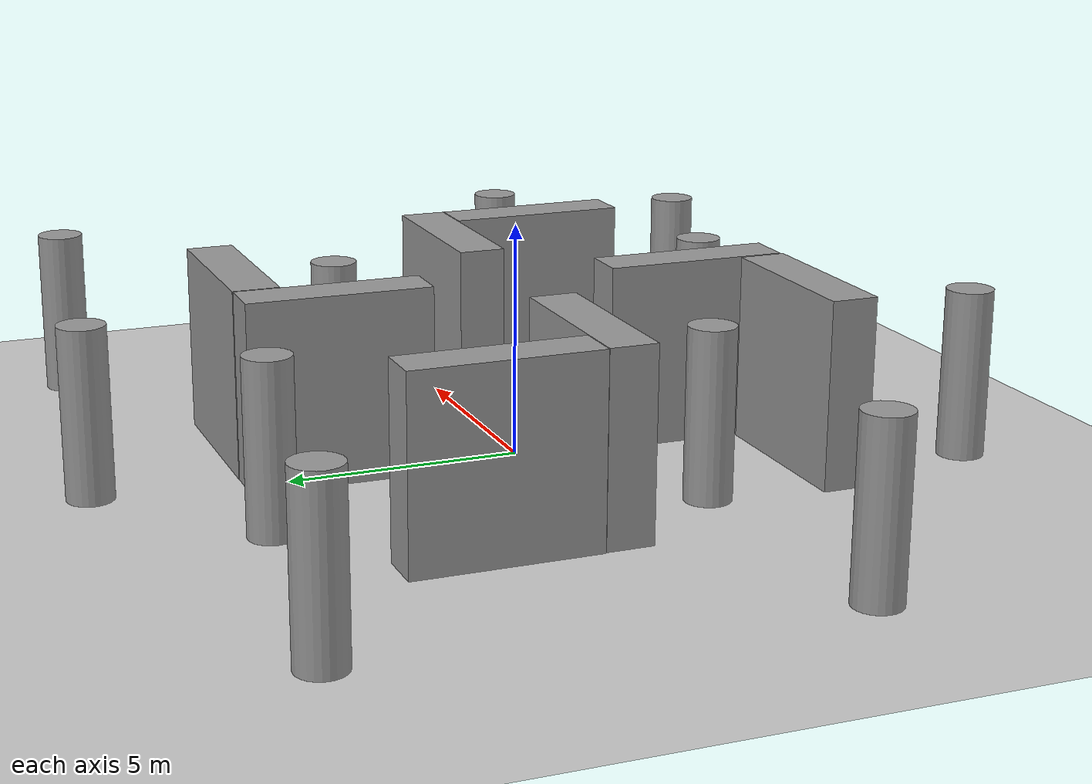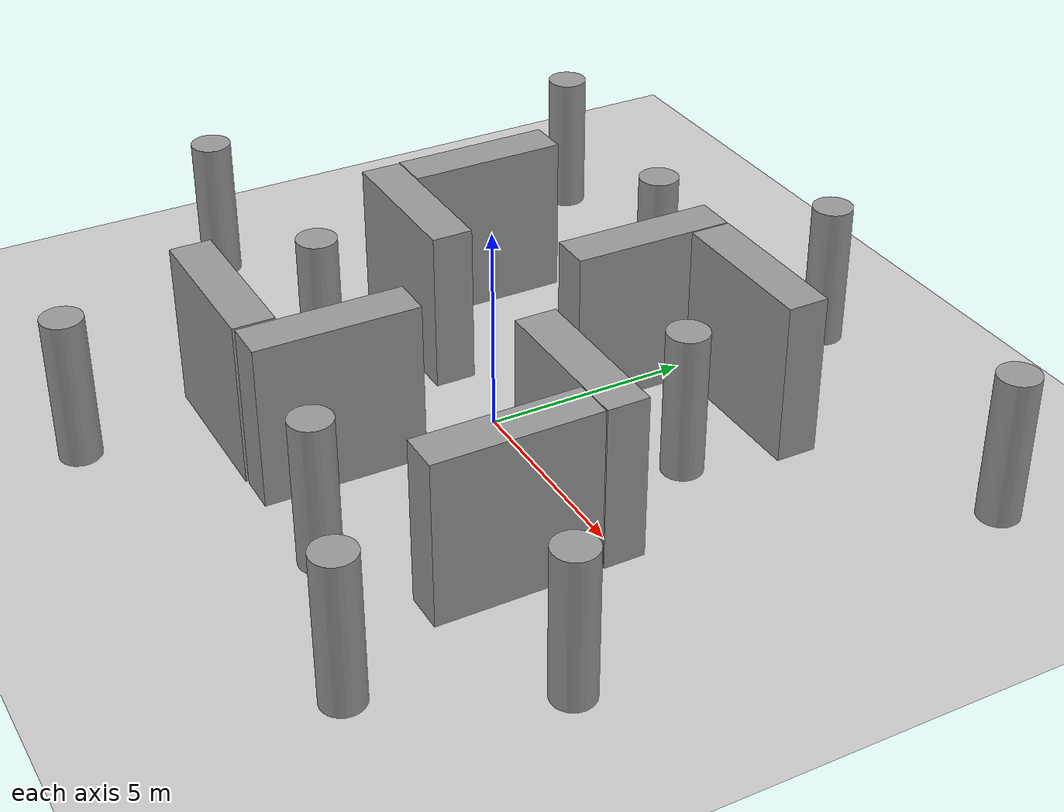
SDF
<sdf version="1.7">
 <world name="default">
  <light name="sun" type="directional">
   <pose>0 0 10 0 -0 0</pose>
   <diffuse>0.8 0.8 0.8 1</diffuse>
   <specular>0.2 0.2 0.2 1</specular>
   <attenuation>
    <range>1000</range>
    <constant>0.9</constant>
    <linear>0.01</linear>
    <quadratic>0.001</quadratic>
   </attenuation>
   <direction>-0.5 0.1 -0.9</direction>
   <spot><inner_angle>0</inner_angle><outer_angle>0</outer_angle><falloff>0</falloff></spot>
  </light>
  <model name="ground_plane">
   <static>1</static>
   <link name="link">
    <collision name="collision">
     <geometry><plane><normal>0 0 1</normal><size>100 100</size></plane></geometry>
     <surface>
      <contact><collide_bitmask>65535</collide_bitmask></contact>
      <friction><ode><mu>100</mu><mu2>50</mu2></ode></friction>
     </surface>
    </collision>
    <visual name="visual">
     <cast_shadows>0</cast_shadows>
     <geometry><plane><normal>0 0 1</normal><size>100 100</size></plane></geometry>
     <material>
      <script><uri>file://media/materials/scripts/gazebo.material</uri><name>Gazebo/Grey</name></script>
     </material>
    </visual>
   </link>
  </model>
  <gravity>0 0 -9.8</gravity>
  <magnetic_field>6e-06 2.3e-05 -4.2e-05</magnetic_field>
  <atmosphere type="adiabatic"/>
  <physics type="ode">
   <max_step_size>0.001</max_step_size>
   <real_time_factor>1</real_time_factor>
   <real_time_update_rate>1000</real_time_update_rate>
  </physics>
  <scene><ambient>0.4 0.4 0.4 1</ambient><background>0.7 0.7 0.7 1</background><shadows>1</shadows></scene>
  <spherical_coordinates>
   <surface_model>EARTH_WGS84</surface_model>
   <latitude_deg>0</latitude_deg>
   <longitude_deg>0</longitude_deg>
   <elevation>0</elevation>
   <heading_deg>0</heading_deg>
  </spherical_coordinates>
  <model name="unit_box_0">
   <pose>3.96568 -0.015529 2.00085 0 -1e-06 -0.000748</pose>
   <link name="link">
    <inertial>
     <mass>1</mass>
     <inertia>
      <ixx>0.166667</ixx>
      <ixy>0</ixy>
      <ixz>0</ixz>
      <iyy>0.166667</iyy>
      <iyz>0</iyz>
      <izz>0.166667</izz>
     </inertia>
    </inertial>
    <collision name="collision"><geometry><box><size>3.92856 1 4.0017</size></box></geometry></collision>
    <visual name="visual">
     <geometry><box><size>3.92856 1 4.0017</size></box></geometry>
     <material>
      <script><name>Gazebo/Grey</name><uri>file://media/materials/scripts/gazebo.material</uri></script>
     </material>
    </visual>
   </link>
  </model>
  <model name="unit_box_0_clone">
   <pose>0.0237 -3.97705 2.00085 0 -1e-06 -1.57935</pose>
   <link name="link">
    <inertial>
     <mass>1</mass>
     <inertia>
      <ixx>0.166667</ixx>
      <ixy>0</ixy>
      <ixz>0</ixz>
      <iyy>0.166667</iyy>
      <iyz>0</iyz>
      <izz>0.166667</izz>
     </inertia>
    </inertial>
    <collision name="collision"><geometry><box><size>3.92856 1 4.0017</size></box></geometry></collision>
    <visual name="visual">
     <geometry><box><size>3.92856 1 4.0017</size></box></geometry>
     <material>
      <script><name>Gazebo/Grey</name><uri>file://media/materials/scripts/gazebo.material</uri></script>
     </material>
    </visual>
   </link>
  </model>
  <model name="unit_box_0_clone_0">
   <pose>-0.025501 3.96052 2.00085 0 -1e-06 -1.58292</pose>
   <link name="link">
    <inertial>
     <mass>1</mass>
     <inertia>
      <ixx>0.166667</ixx>
      <ixy>0</ixy>
      <ixz>0</ixz>
      <iyy>0.166667</iyy>
      <iyz>0</iyz>
      <izz>0.166667</izz>
     </inertia>
    </inertial>
    <collision name="collision"><geometry><box><size>3.92856 1 4.0017</size></box></geometry></collision>
    <visual name="visual">
     <geometry><box><size>3.92856 1 4.0017</size></box></geometry>
     <material>
      <script><name>Gazebo/Grey</name><uri>file://media/materials/scripts/gazebo.material</uri></script>
     </material>
    </visual>
   </link>
  </model>
  <model name="unit_box_0_clone_1">
   <pose>-3.96951 0.000584 2.00085 0 -1e-06 -0.000694</pose>
   <link name="link">
    <inertial>
     <mass>1</mass>
     <inertia>
      <ixx>0.166667</ixx>
      <ixy>0</ixy>
      <ixz>0</ixz>
      <iyy>0.166667</iyy>
      <iyz>0</iyz>
      <izz>0.166667</izz>
     </inertia>
    </inertial>
    <collision name="collision"><geometry><box><size>3.92856 1 4.0017</size></box></geometry></collision>
    <visual name="visual">
     <geometry><box><size>3.92856 1 4.0017</size></box></geometry>
     <material>
      <script><name>Gazebo/Grey</name><uri>file://media/materials/scripts/gazebo.material</uri></script>
     </material>
    </visual>
   </link>
  </model>
  <model name="unit_box_0_clone_clone">
   <pose>5.42275 -2.50281 2.00085 0 1e-06 -1.57082</pose>
   <link name="link">
    <inertial>
     <mass>1</mass>
     <inertia>
      <ixx>0.166667</ixx>
      <ixy>0</ixy>
      <ixz>0</ixz>
      <iyy>0.166667</iyy>
      <iyz>0</iyz>
      <izz>0.166667</izz>
     </inertia>
    </inertial>
    <collision name="collision"><geometry><box><size>3.92856 1 4.0017</size></box></geometry></collision>
    <visual name="visual">
     <geometry><box><size>3.92856 1 4.0017</size></box></geometry>
     <material>
      <script><name>Gazebo/Grey</name><uri>file://media/materials/scripts/gazebo.material</uri></script>
     </material>
    </visual>
   </link>
  </model>
  <model name="unit_box_0_clone_clone_0">
   <pose>-5.46406 2.4845 2.00085 0 -1e-06 -1.57079</pose>
   <link name="link">
    <inertial>
     <mass>1</mass>
     <inertia>
      <ixx>0.166667</ixx>
      <ixy>0</ixy>
      <ixz>0</ixz>
      <iyy>0.166667</iyy>
      <iyz>0</iyz>
      <izz>0.166667</izz>
     </inertia>
    </inertial>
    <collision name="collision"><geometry><box><size>3.92856 1 4.0017</size></box></geometry></collision>
    <visual name="visual">
     <geometry><box><size>3.92856 1 4.0017</size></box></geometry>
     <material>
      <script><name>Gazebo/Grey</name><uri>file://media/materials/scripts/gazebo.material</uri></script>
     </material>
    </visual>
   </link>
  </model>
  <model name="unit_box_0_clone_2">
   <pose>-2.52082 -5.47721 2.00085 0 -1e-06 -0.000807</pose>
   <link name="link">
    <inertial>
     <mass>1</mass>
     <inertia>
      <ixx>0.166667</ixx>
      <ixy>0</ixy>
      <ixz>0</ixz>
      <iyy>0.166667</iyy>
      <iyz>0</iyz>
      <izz>0.166667</izz>
     </inertia>
    </inertial>
    <collision name="collision"><geometry><box><size>3.92856 1 4.0017</size></box></geometry></collision>
    <visual name="visual">
     <geometry><box><size>3.92856 1 4.0017</size></box></geometry>
     <material>
      <script><name>Gazebo/Grey</name><uri>file://media/materials/scripts/gazebo.material</uri></script>
     </material>
    </visual>
   </link>
  </model>
  <model name="unit_box_0_clone_3">
   <pose>2.4985 5.42463 2.00085 0 -1e-06 -0.000783</pose>
   <link name="link">
    <inertial>
     <mass>1</mass>
     <inertia>
      <ixx>0.166667</ixx>
      <ixy>0</ixy>
      <ixz>0</ixz>
      <iyy>0.166667</iyy>
      <iyz>0</iyz>
      <izz>0.166667</izz>
     </inertia>
    </inertial>
    <collision name="collision"><geometry><box><size>3.92856 1 4.0017</size></box></geometry></collision>
    <visual name="visual">
     <geometry><box><size>3.92856 1 4.0017</size></box></geometry>
     <material>
      <script><name>Gazebo/Grey</name><uri>file://media/materials/scripts/gazebo.material</uri></script>
     </material>
    </visual>
   </link>
  </model>
  <model name="unit_cylinder">
   <pose>-2.86011 6.14115 1.81828 0 -0 0.001037</pose>
   <link name="link">
    <inertial>
     <mass>1</mass>
     <inertia><ixx>0.145833</ixx><ixy>0</ixy><ixz>0</ixz><iyy>0.145833</iyy><iyz>0</iyz><izz>0.125</izz></inertia>
    </inertial>
    <collision name="collision">
     <geometry><cylinder><radius>0.5</radius><length>3.63657</length></cylinder></geometry>
    </collision>
    <visual name="visual">
     <geometry><cylinder><radius>0.5</radius><length>3.63657</length></cylinder></geometry>
     <material>
      <script><name>Gazebo/Grey</name><uri>file://media/materials/scripts/gazebo.material</uri></script>
     </material>
    </visual>
   </link>
  </model>
  <model name="unit_cylinder_clone">
   <pose>-9.92508 -2.96299 1.81828 0 -0 0.001</pose>
   <link name="link">
    <inertial>
     <mass>1</mass>
     <inertia><ixx>0.145833</ixx><ixy>0</ixy><ixz>0</ixz><iyy>0.145833</iyy><iyz>0</iyz><izz>0.125</izz></inertia>
    </inertial>
    <collision name="collision">
     <geometry><cylinder><radius>0.5</radius><length>3.63657</length></cylinder></geometry>
    </collision>
    <visual name="visual">
     <geometry><cylinder><radius>0.5</radius><length>3.63657</length></cylinder></geometry>
     <material>
      <script><name>Gazebo/Grey</name><uri>file://media/materials/scripts/gazebo.material</uri></script>
     </material>
    </visual>
   </link>
  </model>
  <model name="unit_cylinder_clone_0">
   <pose>-9 7 1.81828 0 -0 0.000994</pose>
   <link name="link">
    <inertial>
     <mass>1</mass>
     <inertia><ixx>0.145833</ixx><ixy>0</ixy><ixz>0</ixz><iyy>0.145833</iyy><iyz>0</iyz><izz>0.125</izz></inertia>
    </inertial>
    <collision name="collision">
     <geometry><cylinder><radius>0.5</radius><length>3.63657</length></cylinder></geometry>
    </collision>
    <visual name="visual">
     <geometry><cylinder><radius>0.5</radius><length>3.63657</length></cylinder></geometry>
     <material>
      <script><name>Gazebo/Grey</name><uri>file://media/materials/scripts/gazebo.material</uri></script>
     </material>
    </visual>
   </link>
  </model>
  <model name="unit_cylinder_clone_1">
   <pose>-4 -2.57272 1.81828 0 -0 0.001</pose>
   <link name="link">
    <inertial>
     <mass>1</mass>
     <inertia><ixx>0.145833</ixx><ixy>0</ixy><ixz>0</ixz><iyy>0.145833</iyy><iyz>0</iyz><izz>0.125</izz></inertia>
    </inertial>
    <collision name="collision">
     <geometry><cylinder><radius>0.5</radius><length>3.63657</length></cylinder></geometry>
    </collision>
    <visual name="visual">
     <geometry><cylinder><radius>0.5</radius><length>3.63657</length></cylinder></geometry>
     <material>
      <script><name>Gazebo/Grey</name><uri>file://media/materials/scripts/gazebo.material</uri></script>
     </material>
    </visual>
   </link>
  </model>
  <model name="unit_cylinder_clone_2">
   <pose>7.01292 -6.95963 1.81828 0 -0 0.001007</pose>
   <link name="link">
    <inertial>
     <mass>1</mass>
     <inertia><ixx>0.145833</ixx><ixy>0</ixy><ixz>0</ixz><iyy>0.145833</iyy><iyz>0</iyz><izz>0.125</izz></inertia>
    </inertial>
    <collision name="collision">
     <geometry><cylinder><radius>0.5</radius><length>3.63657</length></cylinder></geometry>
    </collision>
    <visual name="visual">
     <geometry><cylinder><radius>0.5</radius><length>3.63657</length></cylinder></geometry>
     <material>
      <script><name>Gazebo/Grey</name><uri>file://media/materials/scripts/gazebo.material</uri></script>
     </material>
    </visual>
   </link>
  </model>
  <model name="unit_cylinder_clone_3">
   <pose>2.83879 -5.63536 1.81828 0 -0 0.001013</pose>
   <link name="link">
    <inertial>
     <mass>1</mass>
     <inertia><ixx>0.145833</ixx><ixy>0</ixy><ixz>0</ixz><iyy>0.145833</iyy><iyz>0</iyz><izz>0.125</izz></inertia>
    </inertial>
    <collision name="collision">
     <geometry><cylinder><radius>0.5</radius><length>3.63657</length></cylinder></geometry>
    </collision>
    <visual name="visual">
     <geometry><cylinder><radius>0.5</radius><length>3.63657</length></cylinder></geometry>
     <material>
      <script><name>Gazebo/Grey</name><uri>file://media/materials/scripts/gazebo.material</uri></script>
     </material>
    </visual>
   </link>
  </model>
  <model name="unit_cylinder_clone_4">
   <pose>3.6606 2.85319 1.81828 0 -0 0.001018</pose>
   <link name="link">
    <inertial>
     <mass>1</mass>
     <inertia><ixx>0.145833</ixx><ixy>0</ixy><ixz>0</ixz><iyy>0.145833</iyy><iyz>0</iyz><izz>0.125</izz></inertia>
    </inertial>
    <collision name="collision">
     <geometry><cylinder><radius>0.5</radius><length>3.63657</length></cylinder></geometry>
    </collision>
    <visual name="visual">
     <geometry><cylinder><radius>0.5</radius><length>3.63657</length></cylinder></geometry>
     <material>
      <script><name>Gazebo/Grey</name><uri>file://media/materials/scripts/gazebo.material</uri></script>
     </material>
    </visual>
   </link>
  </model>
  <model name="unit_cylinder_clone_2_clone">
   <pose>-3.36547 -8.8845 1.81828 0 -0 0.001007</pose>
   <link name="link">
    <inertial>
     <mass>1</mass>
     <inertia><ixx>0.145833</ixx><ixy>0</ixy><ixz>0</ixz><iyy>0.145833</iyy><iyz>0</iyz><izz>0.125</izz></inertia>
    </inertial>
    <collision name="collision">
     <geometry><cylinder><radius>0.5</radius><length>3.63657</length></cylinder></geometry>
    </collision>
    <visual name="visual">
     <geometry><cylinder><radius>0.5</radius><length>3.63657</length></cylinder></geometry>
     <material>
      <script><name>Gazebo/Grey</name><uri>file://media/materials/scripts/gazebo.material</uri></script>
     </material>
    </visual>
   </link>
  </model>
  <model name="unit_cylinder_clone_2_clone_0">
   <pose>0.478805 9 1.81828 0 -0 0.001007</pose>
   <link name="link">
    <inertial>
     <mass>1</mass>
     <inertia><ixx>0.145833</ixx><ixy>0</ixy><ixz>0</ixz><iyy>0.145833</iyy><iyz>0</iyz><izz>0.125</izz></inertia>
    </inertial>
    <collision name="collision">
     <geometry><cylinder><radius>0.5</radius><length>3.63657</length></cylinder></geometry>
    </collision>
    <visual name="visual">
     <geometry><cylinder><radius>0.5</radius><length>3.63657</length></cylinder></geometry>
     <material>
      <script><name>Gazebo/Grey</name><uri>file://media/materials/scripts/gazebo.material</uri></script>
     </material>
    </visual>
   </link>
  </model>
  <model name="unit_cylinder_clone_2_clone_1">
   <pose>8.40046 8 1.81828 0 -0 0.001007</pose>
   <link name="link">
    <inertial>
     <mass>1</mass>
     <inertia><ixx>0.145833</ixx><ixy>0</ixy><ixz>0</ixz><iyy>0.145833</iyy><iyz>0</iyz><izz>0.125</izz></inertia>
    </inertial>
    <collision name="collision">
     <geometry><cylinder><radius>0.5</radius><length>3.63657</length></cylinder></geometry>
    </collision>
    <visual name="visual">
     <geometry><cylinder><radius>0.5</radius><length>3.63657</length></cylinder></geometry>
     <material>
      <script><name>Gazebo/Grey</name><uri>file://media/materials/scripts/gazebo.material</uri></script>
     </material>
    </visual>
   </link>
  </model>
  <model name="unit_cylinder_clone_2_clone_2">
   <pose>9 -3 1.81828 0 -0 0.001007</pose>
   <link name="link">
    <inertial>
     <mass>1</mass>
     <inertia><ixx>0.145833</ixx><ixy>0</ixy><ixz>0</ixz><iyy>0.145833</iyy><iyz>0</iyz><izz>0.125</izz></inertia>
    </inertial>
    <collision name="collision">
     <geometry><cylinder><radius>0.5</radius><length>3.63657</length></cylinder></geometry>
    </collision>
    <visual name="visual">
     <geometry><cylinder><radius>0.5</radius><length>3.63657</length></cylinder></geometry>
     <material>
      <script><name>Gazebo/Grey</name><uri>file://media/materials/scripts/gazebo.material</uri></script>
     </material>
    </visual>
   </link>
  </model>
 </world>
</sdf>
